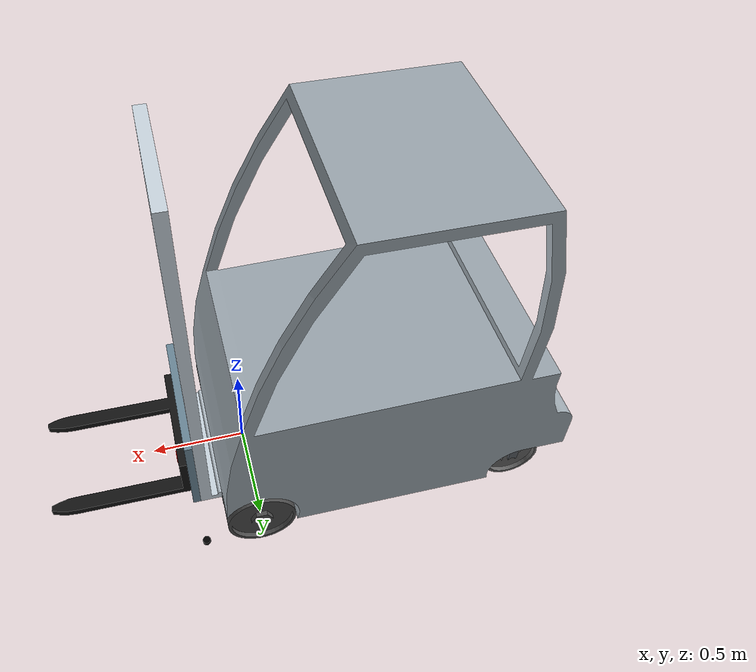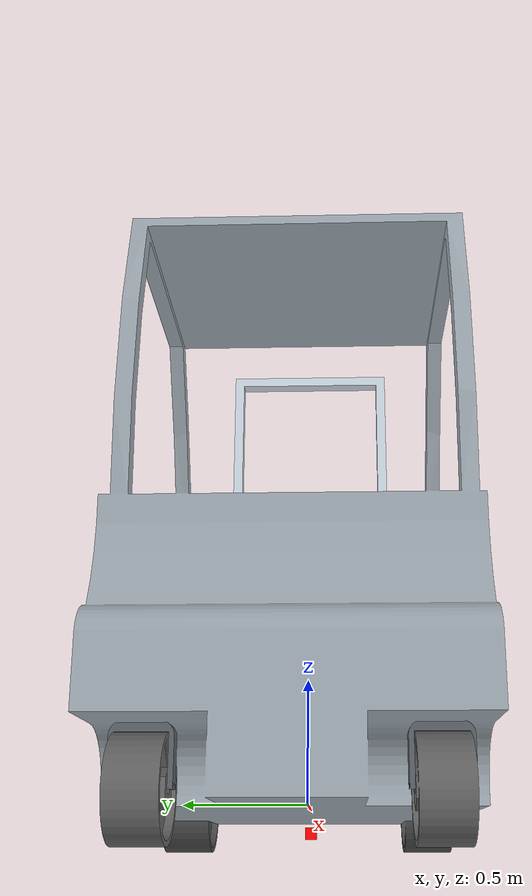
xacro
<?xml version="1.0" ?>
<robot name="RX20_16" xmlns:xacro="http://www.ros.org/wiki/xacro" >

<xacro:include filename="$(find wb_nav2_bringup)/urdf/RX20_16/inertia.xacro" />
<xacro:include filename="$(find wb_nav2_bringup)/urdf/RX20_16/base.xacro" />
<xacro:include filename="$(find wb_nav2_bringup)/urdf/RX20_16/nav_lidar.xacro" />
<xacro:include filename="$(find wb_nav2_bringup)/urdf/RX20_16/steer_wheels.xacro" />
<xacro:include filename="$(find wb_nav2_bringup)/urdf/RX20_16/front_wheels.xacro" />
<xacro:include filename="$(find wb_nav2_bringup)/urdf/RX20_16/camera.xacro" />
<xacro:include filename="$(find wb_nav2_bringup)/urdf/RX20_16/loading_forklift_joints.xacro" />
<xacro:include filename="$(find wb_nav2_bringup)/urdf/RX20_16/wheel_control.xacro" />

<xacro:rx20_steer_wheel name="left" x_steering="-1.429" y_steering="0.404" z_steering="0.06" radius="0.150" width="0.15" flip="-1" />
<xacro:rx20_steer_wheel name="right" x_steering="-1.429" y_steering="-0.404" z_steering="0.06" radius="0.150" width="0.15" flip="-1" />

<xacro:rx20_front_wheel name="right" x_loading="0.0" y_loading="-0.466" z_loading="0.0" radius="0.181" width="0.18" flip="-1" />
<xacro:rx20_front_wheel name="left" x_loading="0.0" y_loading="0.466" z_loading="0.0" radius="0.181" width="0.18" flip="-1" />

<xacro:camera name="front"  x="0.38"  y="0" z="-0.1" roll="0.0" pitch="0.0" yaw="0.0"/>

<xacro:nav_lidar name="rf"  x="0.3"  y="-0.6" z="0.0" roll="0" pitch="0" yaw="-1.2" resolution="1"/>
<xacro:nav_lidar name="lf"  x="0.3"  y="+0.6" z="0.0" roll="0" pitch="0" yaw="+1.2" resolution="1"/>

</robot>

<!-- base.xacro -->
<robot name="RX20_16" xmlns:xacro="http://www.ros.org/wiki/xacro">
  <link name="base_footprint"/>
  <link name="base_scan"/>
  <link name="base_link">
    <inertial>
      <origin xyz="-0.8 0 0.417" rpy="0 0 0"/>
      <xacro:box_inertia mass="500" x="1.843" y="1.1" z="0.835"/>
      <mass value= "500"/>
    </inertial>

    <collision>
      <origin rpy="0 0 0" xyz="0 0 0"/>
      <geometry>
        <mesh filename="file:$(find wb_nav2_bringup)/urdf/RX20_16/meshes/body.dae" />
      </geometry>
    </collision>
    <visual>
      <origin rpy="0 0 0" xyz="0 0 0"/>
      <geometry>
        <mesh filename="file:$(find wb_nav2_bringup)/urdf/RX20_16/meshes/body.dae" />
      </geometry>
    </visual>
  </link>

  <joint name="base_joint" type="fixed">
    <parent link="base_footprint" />
    <child link="base_link" />
    <origin xyz="0.0 0.0 0.0" rpy="0 0 0" />
    <axis xyz="0 0 1" />
  </joint>

  <joint name="scan_joint" type="fixed">
    <parent link="base_link" />
    <child link="base_scan" />
    <origin xyz="0.0 0.0 0.0" rpy="0 0 0" />
    <axis xyz="0 0 1" />
  </joint>

  <link name="imu_link"/>
  <joint name="imu_joint" type="fixed">
    <parent link="base_link"/>
    <child link="imu_link"/>
    <origin xyz="0.0 0 0.068" rpy="0 0 0"/>
  </joint>

  <!-- imu settings copied from turtlebot4 -->
  <gazebo reference="imu_link">
    <sensor type="imu" name="imu">
      <always_on>true</always_on>
      <update_rate>200</update_rate>
      <topic>imu</topic>
      <imu>
        <angular_velocity>
          <x>
            <noise type="gaussian">
              <mean>0.0</mean>
              <stddev>0.0</stddev>
            </noise>
          </x>
          <y>
            <noise type="gaussian">
              <mean>0.0</mean>
              <stddev>0.0</stddev>
            </noise>
          </y>
          <z>
            <noise type="gaussian">
              <mean>0.0</mean>
              <stddev>0.0</stddev>
            </noise>
          </z>
        </angular_velocity>
        <linear_acceleration>
          <x>
            <noise type="gaussian">
              <mean>0.0</mean>
              <stddev>0.0</stddev>
            </noise>
          </x>
          <y>
            <noise type="gaussian">
              <mean>0.0</mean>
              <stddev>0.0</stddev>
            </noise>
          </y>
          <z>
            <noise type="gaussian">
              <mean>0.0</mean>
              <stddev>0.0</stddev>
            </noise>
          </z>
        </linear_acceleration>
      </imu>
    </sensor>
  </gazebo>
</robot>

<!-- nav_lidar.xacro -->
<robot name="RX20_16" xmlns:xacro="http://www.ros.org/wiki/xacro">

<xacro:macro name="nav_lidar" params="name x y z roll pitch yaw resolution">

  <link name="${name}_nav_lidar">
      <inertial>
      <origin xyz="0 0 0" rpy="0 0 0"/>
      <xacro:cylinder_inertia mass="0.01" r="0.02" l="0.02" />
      <mass value= "0.01"/>
      </inertial>

      <collision>
      <origin xyz="0 0 0" rpy="0 0 0"/>
      <geometry>
            <cylinder radius="0.02" length="0.02"/>
      </geometry>
      </collision>

      <visual>
      <origin xyz="0 0 0" rpy="0 0 0"/>
      <geometry>
      <cylinder radius="0.02" length="0.02"/>
      </geometry>
      <material name="black">
        <color rgba="0 0 0 1.0"/>
      </material>
      </visual>
  </link>

  <joint name="lidar_joint_${name}" type="fixed">

    <parent link="base_scan" />
    <child link="${name}_nav_lidar" />
    <origin xyz="${x} ${y} ${z}" rpy="${roll} ${pitch} ${yaw}" />
    <axis xyz="0 0 1" />
  </joint>

  <gazebo reference="${name}_nav_lidar">
      <sensor name="${name}_nav_lidar" type="gpu_lidar">
      <always_on>true</always_on>
      <visualize>true</visualize>
      <update_rate>10</update_rate>
      <topic>/lidar_${name}/scan</topic>
      <gz_frame_id>${name}_nav_lidar</gz_frame_id>
      <lidar>
        <scan>
          <horizontal>
            <samples>360</samples>
            <resolution>1.000000</resolution>
            <min_angle>-1.570796</min_angle>
            <max_angle>1.570796</max_angle>
          </horizontal>
        </scan>
        <range>
          <min>0.2</min>
          <max>20.0</max>
          <resolution>0.01</resolution>
        </range>
        <noise>
          <type>gaussian</type>
          <mean>0.0</mean>
          <stddev>0.01</stddev>
        </noise>
      </lidar>
    </sensor>
  </gazebo>

  <gazebo reference="lidar_joint_${name}">
    <preserveFixedJoint>true</preserveFixedJoint>
  </gazebo>

 </xacro:macro>

</robot>

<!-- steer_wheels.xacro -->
<robot name="RX20_16" xmlns:xacro="http://www.ros.org/wiki/xacro">

<xacro:macro name="rx20_steer_wheel" params="name x_steering y_steering z_steering radius width flip">

  <link name="wheel_${name}_steering_link">
    <inertial>
    <origin xyz="0 0 0.1125" rpy="0 0 0"/>
    <xacro:cylinder_inertia mass="1" r="0.05" l="0.225" />
    <mass value= "1"/>
    </inertial>
    <collision >
      <origin xyz="0 0 0" rpy="0 0 0"/>
      <geometry>
          <mesh filename="file:$(find wb_nav2_bringup)/urdf/RX20_16/meshes/steering_rod.dae" />
      </geometry>
    </collision>
    <visual >
      <origin xyz="0 0 0" rpy="0 0 0"/>
      <geometry>
          <mesh filename="file:$(find wb_nav2_bringup)/urdf/RX20_16/meshes/steering_rod.dae" />
      </geometry>
    </visual>
  </link>

  <joint name="wheel_${name}_steering_joint" type="fixed">
    <parent link="base_link" />
    <child link="wheel_${name}_steering_link" />
    <origin xyz="${x_steering} ${y_steering} ${z_steering}" rpy="0 0 1.570796" />
    <axis xyz="0 0 ${1*flip}" />
    <limit lower="-1.0" upper="1.0" effort="30" velocity="0.3"/>
     <dynamics damping="1" friction="1"/>
  </joint>

  <link name="wheel_${name}_link">
    <inertial>
    <origin xyz="0 0 0" rpy="0 0 0"/>
    <xacro:cylinder_inertia mass="0.5" r="${radius}" l="${width}" />
    <mass value= "0.5"/>
    </inertial>

    <collision >
      <origin xyz="0 0 0" rpy="0 0 0"/>
      <geometry>
           <cylinder radius="${radius}" length="${width}"/>
      </geometry>
    </collision>

    <visual>
    <origin xyz="0 0 0" rpy="0 0 0"/>
    <geometry>
        <mesh filename="file:$(find wb_nav2_bringup)/urdf/RX20_16/meshes/rear_wheel.dae" />
    </geometry>
    </visual>
  </link>

  <joint name="wheel_${name}_joint" type="fixed">
    <parent link="wheel_${name}_steering_link" />
    <child link="wheel_${name}_link" />
    <origin xyz=" 0 0 -0.09" rpy="0 1.570796 0" />
    <axis xyz="0 0 1" />
        <limit effort="100" velocity="100"/>
     <dynamics damping="0.01" friction="0.0"/>
  </joint>

  <transmission name="trans_steering_${name}">
    <type>transmission_interface/SimpleTransmission</type>
    <joint name="wheel_${name}_steering_joint">
      <hardwareInterface>hardware_interface/EffortJointInterface</hardwareInterface>
    </joint>
    <actuator name="motor_steering_wheel_${name}">
      <hardwareInterface>hardware_interface/EffortJointInterface</hardwareInterface>
      <mechanicalReduction>1</mechanicalReduction>
    </actuator>
  </transmission>

  <gazebo reference="wheel_${name}_link">
			<mu1>0</mu1>
			<mu2>0</mu2>
			<kp>1000000000.0</kp>
			<kd>1000.0</kd>
			<minDepth>0.002</minDepth>
			<maxVel>0</maxVel>
		</gazebo>

 </xacro:macro>

</robot>

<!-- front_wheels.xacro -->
<robot name="RX20_16" xmlns:xacro="http://www.ros.org/wiki/xacro">

<xacro:macro name="rx20_front_wheel" params="name x_loading y_loading z_loading radius width flip">

  <link name="wheel_${name}_driving_link">
    <inertial>
    <origin xyz="0 0 0" rpy="0 0 0"/>
    <xacro:cylinder_inertia mass="1" r="${radius}" l="${width}" />
    <mass value= "1"/>
    </inertial>

    <collision >
      <origin xyz="0 0 0" rpy="0 0 0"/>
      <geometry>
           <cylinder radius="${radius}" length="${width}"/>
      </geometry>
    </collision>

    <visual>
    <origin xyz="0 0 0" rpy="0 0 0"/>
    <geometry>
        <mesh filename="file:$(find wb_nav2_bringup)/urdf/RX20_16/meshes/front_wheel.dae" />
    </geometry>
    </visual>
  </link>

  <joint name="wheel_${name}_driving_joint" type="continuous">
    <parent link="base_link" />
    <child link="wheel_${name}_driving_link" />
    <origin xyz="${x_loading} ${y_loading} ${z_loading}" rpy="1.570796 0 0" />
    <axis xyz="0 0 ${1*flip}" />
    <limit effort="100" velocity="100"/>
     <dynamics damping="0.01" friction="1.0"/>
  </joint>

   <transmission name="trans_dynamic_${name}">
    <type>transmission_interface/SimpleTransmission</type>
    <joint name="wheel_${name}_driving_joint">
      <hardwareInterface>hardware_interface/EffortJointInterface</hardwareInterface>
    </joint>
    <actuator name="motor_dynamic_wheel_${name}">
      <hardwareInterface>hardware_interface/EffortJointInterface</hardwareInterface>
      <mechanicalReduction>1</mechanicalReduction>
    </actuator>
  </transmission>

  <gazebo reference="wheel_${name}_driving_link">
			<mu1>1.0</mu1>
			<mu2>1.0</mu2>
			<kp>1000000000.0</kp>
			<kd>10.0</kd>
			<min_depth>0.01</min_depth>
			<max_vel>1.0</max_vel>
		</gazebo>

 </xacro:macro>

</robot>

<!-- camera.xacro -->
<robot name="RX20_16" xmlns:xacro="http://www.ros.org/wiki/xacro">

<xacro:macro name="camera" params="name x y z roll pitch yaw ">
  <link name="${name}_camera_link">
      <inertial>
      <origin xyz="0 0 0" rpy="0 0 0"/>
      <inertia ixx="0.001" ixy="0.000" ixz="0.0" iyy="0.001" iyz="0.0" izz="0.001" />
      <mass value= "0.01"/>
      </inertial>

      <visual name="${name}_camera_link">
      <origin xyz="0 0 0" rpy="0 0 0"/>
      <geometry>
       <box size="0.01 0.05 0.05"/>
      </geometry>
      <material name="red">
        <color rgba="1 0 0 1.0"/>
      </material>
      </visual>
  </link>

  <joint name="${name}_camera_joint" type="fixed">
    <parent link="base_link" />
    <child link="${name}_camera_link" />
    <origin xyz="${x} ${y} ${z}" rpy="${roll} ${pitch} ${yaw}" />
    <axis xyz="0 0 1" />
  </joint>

  <joint name="camera_optical_joint" type="fixed">
    <!-- these values have to be these values otherwise the gazebo camera
        image won't be aligned properly with the frame it is supposedly
        originating from -->
    <origin xyz="0 0 0" rpy="-1.5708 0 -1.5708"/>
    <parent link="${name}_camera_link"/>
    <child link="${name}_camera_link_optical"/>
  </joint>

  <link name="${name}_camera_link_optical">
  </link>

    <!-- Gazebo links and joints -->
  <gazebo reference="${name}_camera_link">
    <sensor name="rgbd_camera" type="rgbd_camera">
      <always_on>1</always_on>
      <camera>
        <horizontal_fov>1.25</horizontal_fov>
        <image>
          <width>800</width>
          <height>600</height>
        </image>
        <clip>
          <near>0.03</near>
          <far>100</far>
        </clip>
        <optical_frame_id>${name}_camera_link_optical</optical_frame_id>
      </camera>
      <update_rate>10</update_rate>
      <visualize>true</visualize>
      <topic>depth_camera</topic>
      <baseline>0.2</baseline>
      <pointCloudCutoff>0.5</pointCloudCutoff>
      <pointCloudCutoffMax>3.0</pointCloudCutoffMax>
      <distortionK1>0</distortionK1>
      <distortionK2>0</distortionK2>
      <distortionK3>0</distortionK3>
      <distortionT1>0</distortionT1>
      <distortionT2>0</distortionT2>
      <CxPrime>0</CxPrime>
      <Cx>0</Cx>
      <Cy>0</Cy>
      <focalLength>0</focalLength>
      <hackBaseline>0</hackBaseline>
    </sensor>

  </gazebo>

</xacro:macro>

  </robot>

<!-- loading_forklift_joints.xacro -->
<robot name="RX20_16" xmlns:xacro="http://www.ros.org/wiki/xacro">

 <link name="tilt_link">
    <inertial>
    <origin xyz="0 0 0" rpy="0 0 0"/>
    <xacro:box_inertia mass="0.1" x="0.2" y="0.1" z="0.05"/>
    <mass value= "0.1"/>
    </inertial>

    <collision >
    <origin xyz="0 0 0" rpy="0 0 0"/>
    <geometry> <mesh filename="file:$(find wb_nav2_bringup)/urdf/RX20_16/meshes/tilt_link.dae" />
    </geometry>
    </collision>

    <visual>
    <origin xyz="0 0 0" rpy="0 0 0"/>
    <geometry>
          <mesh filename="file:$(find wb_nav2_bringup)/urdf/RX20_16/meshes/tilt_link.dae" />
    </geometry>
    </visual>
  </link>

  <!-- revolute link -->
  <joint name="tilt_joint" type="fixed">
    <parent link="base_link" />
    <child link="tilt_link" />
    <origin xyz="0.18 0 0.0" rpy="0 0 0" />
    <axis xyz="0 1 0" />
    <limit lower="-0.087" upper="0.105" effort="50" velocity="0.3"/>
     <dynamics damping="10" friction="1"/>
  </joint>

  <link name="lift_link">
    <inertial>
    <origin xyz="0 0 0" rpy="0 0 0"/>
    <xacro:box_inertia mass="0.1" x="0.2" y="0.1" z="0.05"/>
    <mass value= "0.1"/>
    </inertial>

    <collision >
    <origin xyz="0 0 0" rpy="0 0 0"/>
    <geometry> <mesh filename="file:$(find wb_nav2_bringup)/urdf/RX20_16/meshes/lift_link.dae" />
    </geometry>
    </collision>

    <visual>
    <origin xyz="0 0 0" rpy="0 0 0"/>
    <geometry>
          <mesh filename="file:$(find wb_nav2_bringup)/urdf/RX20_16/meshes/lift_link.dae" />
    </geometry>
    </visual>
  </link>

  <!-- prismatic link -->
  <joint name="lift_joint" type="prismatic">
    <parent link="tilt_link" />
    <child link="lift_link" />
    <origin xyz="0.134 0 0.22" rpy="0 0 0" />
    <axis xyz="0 0 1" />
    <limit lower="-0.25" upper="1.5" effort="100" velocity="0.3"/>
     <dynamics damping="1.0" friction="0.001"/>
  </joint>

  <link name="sideshift_link">
    <inertial>
    <origin xyz="0 0 0" rpy="0 0 0"/>
    <xacro:box_inertia mass="0.1" x="0.2" y="0.1" z="0.05"/>
    <mass value= "0.1"/>
    </inertial>

    <collision >
    <origin xyz="0 0 0" rpy="0 0 0"/>
    <geometry>
      <mesh filename="file:$(find wb_nav2_bringup)/urdf/RX20_16/meshes/sideshift_link_mid_short_dark.dae" />
    </geometry>
    </collision>

    <visual>
    <origin xyz="0 0 0" rpy="0 0 0"/>
    <geometry>
      <mesh filename="file:$(find wb_nav2_bringup)/urdf/RX20_16/meshes/sideshift_link_mid_short_dark.dae" />
    </geometry>
    </visual>
  </link>

  <joint name="sideshift_joint" type="fixed">
    <parent link="lift_link" />
    <child link="sideshift_link" />
    <origin xyz="0.06 0 -0.20" rpy="0 0 0" />
    <axis xyz="0 1 0" />
    <limit lower="-0.15" upper="0.2" effort="100" velocity="0.3"/>
     <dynamics damping="10" friction="1"/>
  </joint>

    <!-- Gazebo plugin configuration -->
    <ros2_control name="2DofPosition" type="system">
        <hardware>
            <plugin>gz_ros2_control/GazeboSimSystem</plugin>
        </hardware>
        <joint name="lift_joint">
            <command_interface name="position" />
            <command_interface name="velocity" />
            <state_interface name="position">
                <param name="initial_value">-0.15</param>
            </state_interface>
            <state_interface name="velocity"/>
            <state_interface name="effort"/>
        </joint>
    </ros2_control>
    <gazebo>
        <plugin filename="gz_ros2_control-system" name="gz_ros2_control::GazeboSimROS2ControlPlugin">
            <parameters>$(find wb_nav2_bringup)/configs/controller.yaml</parameters>
        </plugin>
    </gazebo>

  </robot>
